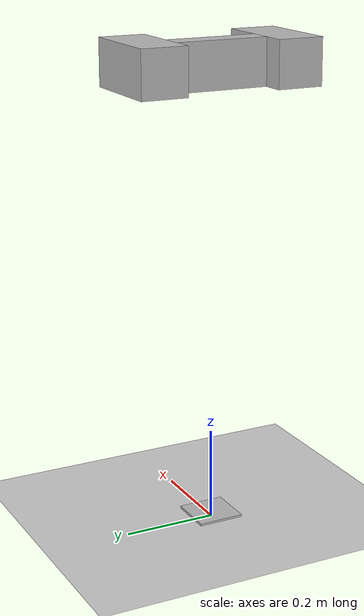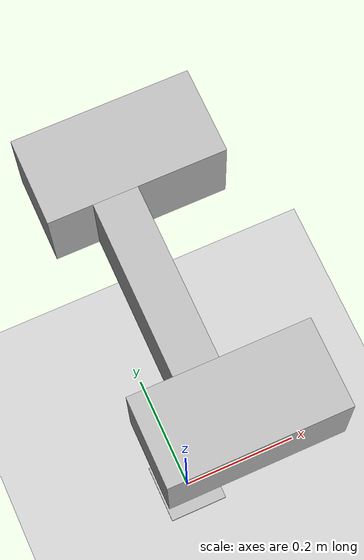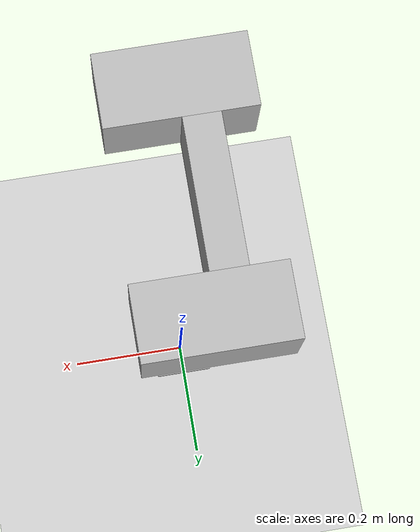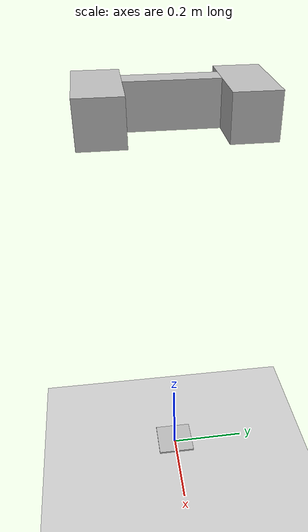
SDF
<?xml version="1.0" ?>
<!--
  Demo world with widgets displaying images coming from a bounding box camera sensor.
-->
<sdf version="1.6">
  <world name="Basic_Cam_World">
    <gravity>0 0 0</gravity>
    <plugin
      filename="gz-sim-physics-system"
      name="gz::sim::systems::Physics">
    </plugin>
    <plugin
      filename="gz-sim-user-commands-system"
      name="gz::sim::systems::UserCommands">
    </plugin>
    <plugin
      filename="gz-sim-scene-broadcaster-system"
      name="gz::sim::systems::SceneBroadcaster">
    </plugin>
    <plugin
      filename="gz-sim-sensors-system"
      name="gz::sim::systems::Sensors">
      <render_engine>ogre2</render_engine>
    </plugin>

    <gui fullscreen="0">
	</gui>

    <light type="directional" name="sun">
      <cast_shadows>true</cast_shadows>
      <pose>0 0 10 0 0 0</pose>
      <diffuse>0.8 0.8 0.8 1</diffuse>
      <specular>0.8 0.8 0.8 1</specular>
      <attenuation>
        <range>1000</range>
        <constant>0.9</constant>
        <linear>0.01</linear>
        <quadratic>0.001</quadratic>
      </attenuation>
      <direction>-0.5 0.1 -0.9</direction>
    </light>

    <model name="ground_plane">
      <static>true</static>
      <link name="link">
        <collision name="collision">
          <geometry>
            <plane>
              <normal>0 0 1</normal>
              <size>100 100</size>
            </plane>
          </geometry>
        </collision>
        <visual name="visual">
          <geometry>
            <plane>
              <normal>0 0 1</normal>
              <size>100 100</size>
            </plane>
          </geometry>
          <material>
            <ambient>0.8 0.8 0.8 1</ambient>
            <diffuse>0.8 0.8 0.8 1</diffuse>
            <specular>0.8 0.8 0.8 1</specular>
          </material>
        </visual>
      </link>
    </model>

	<include>
              <uri>../../Markers/DICT_4X4_50_s100/DICT_4X4_50_s100_id0/DICT_4X4_50_s100_id0.sdf</uri>
	</include>

    	<include>
		<pose>0 0 1 0 0 0</pose>
		<uri>../../Cameras/Cam_Stereo_temp.sdf</uri>
       	</include>

  </world>
</sdf>

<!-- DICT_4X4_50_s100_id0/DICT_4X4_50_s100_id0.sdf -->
<sdf version="1.5">
        <model name="DICT_4X4_50_s100_id0">
              <link name="Main">

              	<inertial>
                <mass>1</mass>
                <pose>0 0 0 0 0 0</pose>
                <inertia>
                    <ixx>1</ixx>
                    <iyy>1</iyy>
                    <izz>1</izz>
                </inertia>
                </inertial>

                <pose>0 0 0 0 0 -1.570796327</pose>
                    <visual name="DICT_4X4_50_s100_id0_Visual">
                        <pose>0 0 0.01 0 0 0</pose>
                        <geometry>
                            <mesh>
                                <scale>1 1 1</scale>
                                <uri>DICT_4X4_50_s100_id0.obj</uri>
                            </mesh>
                        </geometry>
                    </visual>
                    <gravity>1</gravity>
                    <velocity_decay/>
                    <self_collide>0</self_collide>
              </link>

          <plugin
                filename="Position_Control"
                name="gz::sim::v7::systems::PositionController">
                <timestep_precision>10</timestep_precision>
                <xyz_offset> 0 0 0</xyz_offset>
                <rpy_offset> 0 0 0</rpy_offset>
            </plugin>

          </model></sdf>

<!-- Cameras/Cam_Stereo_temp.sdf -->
<sdf version="1.5">
        <model name="camera">
            <pose>0 0 0 0 0 0</pose>

            <link name="Middel">
                <pose>-0.025 0 0 0 0 0</pose>
                <inertial>
                    <mass>0.8</mass>
                    <pose>0.025 0 0 0 0 0</pose>
                    <inertia>
                        <ixx>0.8</ixx>
                        <iyy>0.8</iyy>
                        <izz>0.8</izz>
                    </inertia>
                </inertial>
                <collision name="collision">
                <geometry>
                    <box>
                    <size>0.05 0.2 0.1</size>
                    </box>
                </geometry>
                </collision>
                <visual name="visual">
                <geometry>
                    <box>
                    <size>0.05 0.2 0.1</size>
                    </box>
                </geometry>
                </visual>

                <sensor name="camera_left" type="camera">
                <pose>0 0.15 0 0 0 0</pose>
                <topic>camera_left</topic>
                <camera>
                    <box_type>full_2d</box_type>
                    <horizontal_fov>1.047</horizontal_fov>
                    <image>
                    <width>800</width>
                    <height>600</height>
                    </image>
                    <clip>
                    <near>0.1</near>
                    <far>10</far>
                    </clip>
                    <save enabled="true">
                    <path>../tmp_files/stereo_left</path>
                    </save>
                    <distortion>
                    <k1>1</k1>
                    <k2>10</k2>
                    <k3>5</k3>
                    <p1>10</p1>
                    <p2>10</p2>
                    <center>0.5 0.5</center>
                    </distortion>
                    <lens>
                    <type>stereographic</type>
                    <scale_to_hfov>true</scale_to_hfov>
                    <cutoff_angle>1.5707963267948966</cutoff_angle>
                    <env_texture_size>256</env_texture_size>
                    </lens>
                </camera>
                <always_on>1</always_on>
                <update_rate>24</update_rate>
                <visualize>true</visualize>

                <plugin
                    filename="gz-sim-camera-video-recorder-system"
                    name="gz::sim::systems::CameraVideoRecorder">
                    <service>camera_left</service>
                    <use_sim_time>true</use_sim_time>
                    <fps>24</fps>
                </plugin>

                </sensor>

                <sensor name="camera_right" type="camera">
                <pose>0 -0.15 0 0 0 0</pose>
                <topic>camera_right</topic>
                <camera>
                    <box_type>full_2d</box_type>
                    <horizontal_fov>1.047</horizontal_fov>
                    <image>
                    <width>800</width>
                    <height>600</height>
                    </image>
                    <clip>
                    <near>0.1</near>
                    <far>10</far>
                    </clip>
                    <save enabled="true">
                    <path>../tmp_files/stereo_right</path>
                    </save>
                    <distortion>
                    <k1>1</k1>
                    <k2>10</k2>
                    <k3>5</k3>
                    <p1>10</p1>
                    <p2>10</p2>
                    <center>0.5 0.5</center>
                    </distortion>
                    <lens>
                    <type>stereographic</type>
                    <scale_to_hfov>true</scale_to_hfov>
                    <cutoff_angle>1.5707963267948966</cutoff_angle>
                    <env_texture_size>256</env_texture_size>
                    </lens>
                </camera>
                <always_on>1</always_on>
                <update_rate>24</update_rate>
                <visualize>true</visualize>

                <plugin
                    filename="gz-sim-camera-video-recorder-system"
                    name="gz::sim::systems::CameraVideoRecorder">
                    <service>camera_right</service>
                    <use_sim_time>true</use_sim_time>
                    <fps>24</fps>
                </plugin>

                </sensor>

            </link>

            <link name="Left">
                <pose>0 0.15 0 0 0 0</pose>
                <inertial>
                    <mass>0.1</mass>
                    <pose>0 -0.15 0 0 0 0</pose>
                    <inertia>
                        <ixx>0.1</ixx>
                        <iyy>0.1</iyy>
                        <izz>0.1</izz>
                    </inertia>
                </inertial>
                <collision name="collision">
                <geometry>
                    <box>
                    <size>0.2 0.1 0.1</size>
                    </box>
                </geometry>
                </collision>
                <visual name="visual">
                <geometry>
                    <box>
                    <size>0.2 0.1 0.1</size>
                    </box>
                </geometry>
                </visual>

            </link>

            <link name="Right">
                <pose>0 -0.15 0 0 0 0</pose>
                <inertial>
                    <mass>0.1</mass>
                    <pose>0 0.15 0 0 0 0</pose>
                    <inertia>
                        <ixx>0.1</ixx>
                        <iyy>0.1</iyy>
                        <izz>0.1</izz>
                    </inertia>
                </inertial>
                <collision name="collision">
                <geometry>
                    <box>
                    <size>0.2 0.1 0.1</size>
                    </box>
                </geometry>
                </collision>
                <visual name="visual">
                <geometry>
                    <box>
                    <size>0.2 0.1 0.1</size>
                    </box>
                </geometry>
                </visual>

            </link>

            <joint type="fixed" name="left_cam">
                <pose>0 0.15 0 0 0 0</pose>
                <parent>Middel</parent>
                <child>Left</child>
            </joint>

            <joint type="fixed" name="RIGHT_cam">
                <pose>0 -0.15 0 0 0 0</pose>
                <parent>Middel</parent>
                <child>Right</child>
            </joint>

            <plugin
                filename="Position_Control"
                name="gz::sim::v7::systems::PositionController">
                <timestep_precision>10</timestep_precision>
                <xyz_offset> 0 0 0</xyz_offset>
                <rpy_offset> 0 0 0</rpy_offset>
            </plugin>

            <plugin
                filename="Pose_To_File"
                name="gz::sim::v7::systems::PoseToFile">
            </plugin>
        </model>
    </sdf>
